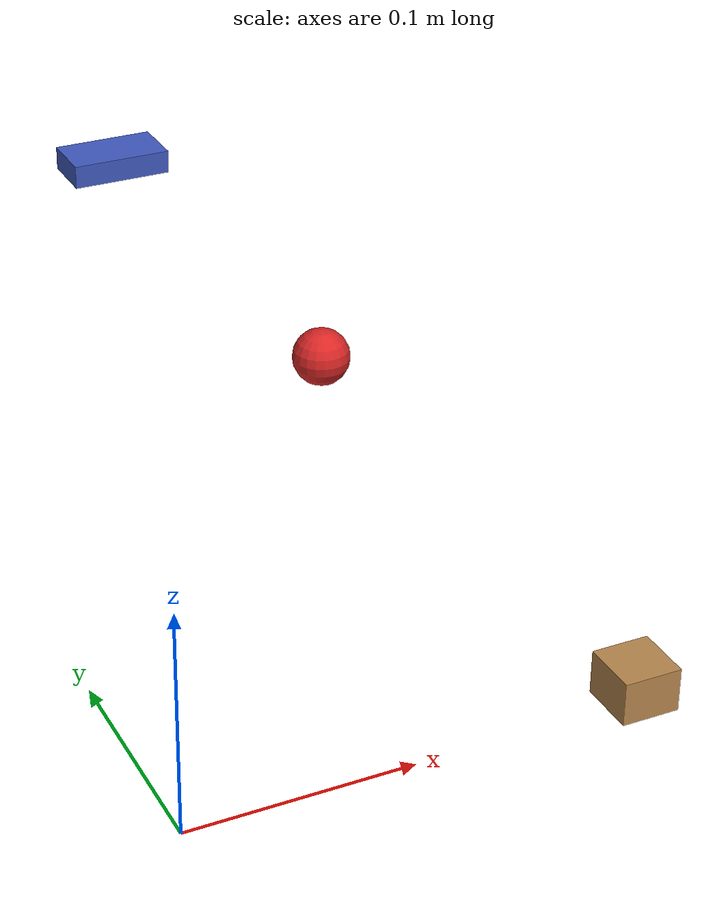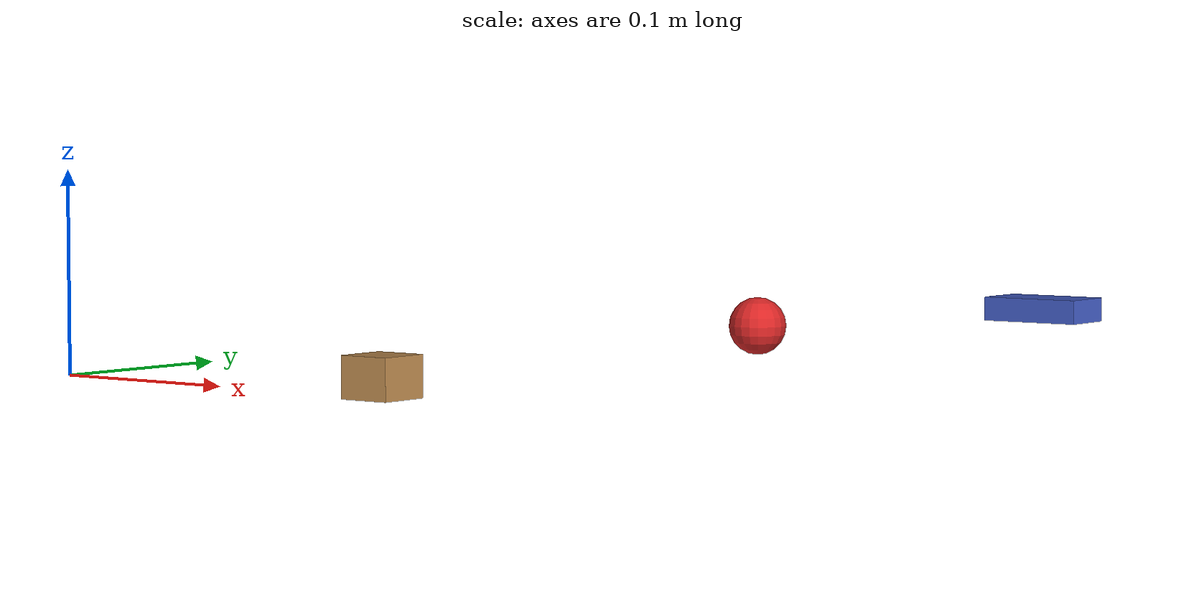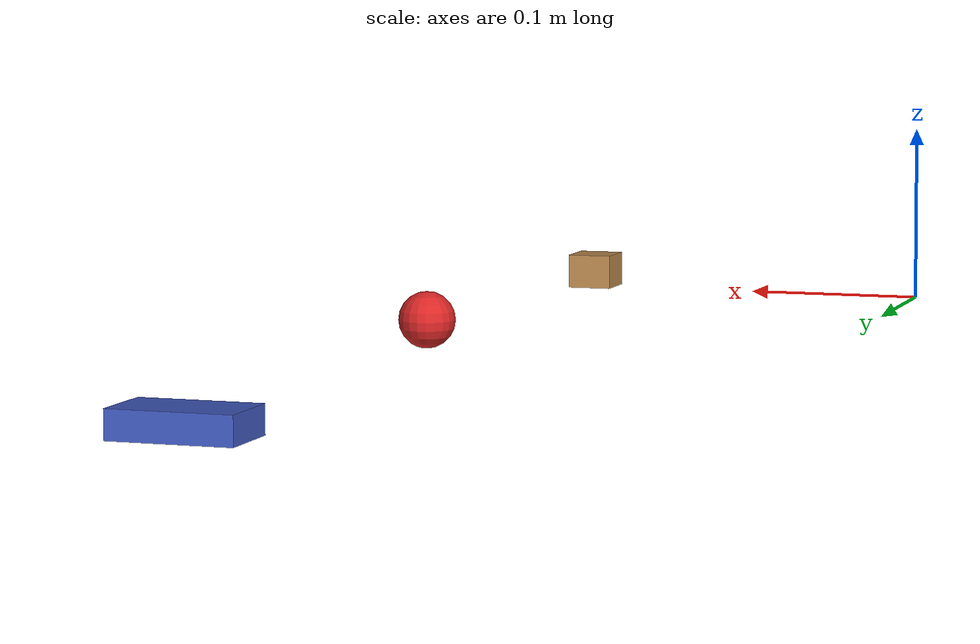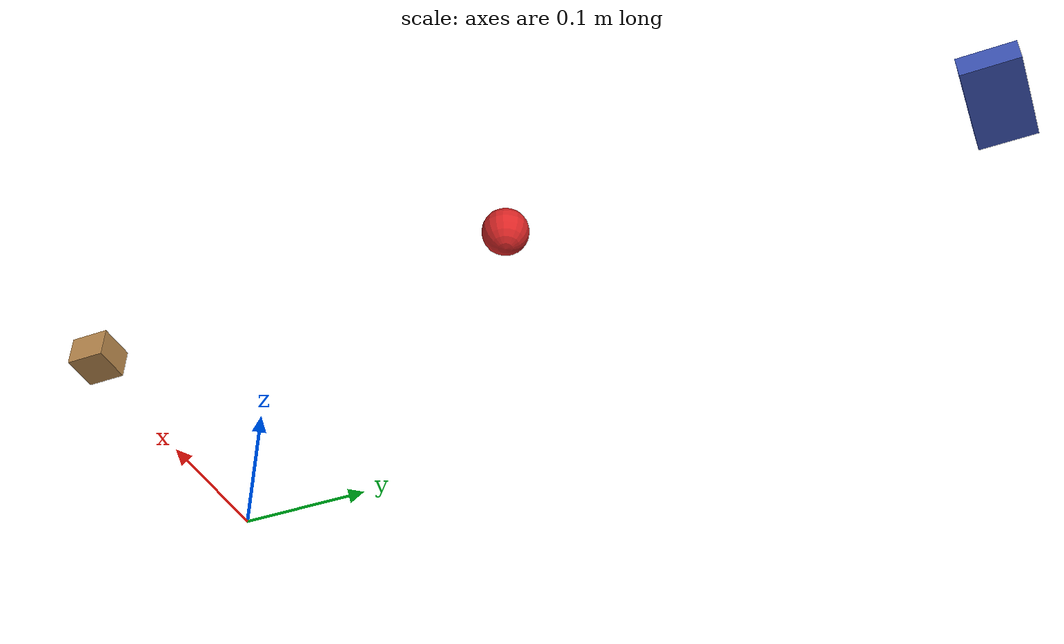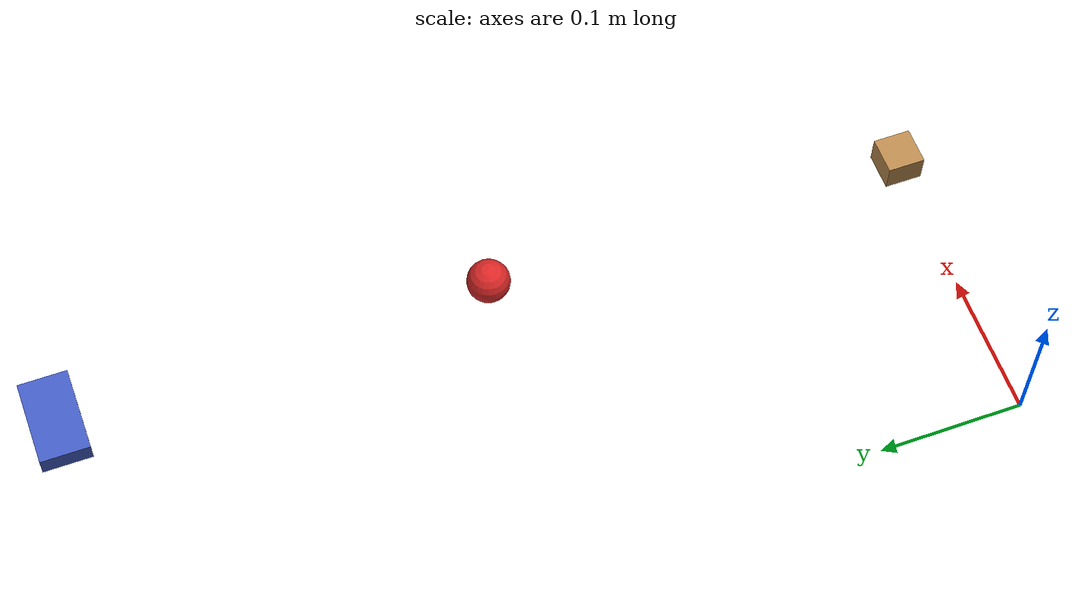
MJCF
<mujoco model="microduck_objects">
    <compiler angle="radian" autolimits="true"/>

    <include file="object_block.xml"/>
    <include file="object_rubber_ball.xml"/>
    <include file="object_sock.xml"/>
</mujoco>

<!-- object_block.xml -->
<mujoco model="microduck_object_block">
    <worldbody>
        <body name="block" pos="0.2 0 0.010">
            <freejoint name="block_free"/>
            <inertial pos="0 0 0" mass="0.012" diaginertia="1.08e-6 1.08e-6 1.35e-6"/>
            <geom name="block_geom" type="box" size="0.013 0.013 0.010"
                  condim="4" friction="0.9 0.02 0.001" solref="0.01 1"
                  solimp="0.95 0.99 0.001 0.5 2" priority="2"
                  rgba="0.72 0.53 0.30 1"/>
        </body>
    </worldbody>
</mujoco>

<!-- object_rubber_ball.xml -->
<mujoco model="microduck_object_rubber_ball">
    <worldbody>
        <body name="rubber_ball" pos="0.2 0.3 0.015">
            <freejoint name="rubber_ball_free"/>
            <inertial pos="0 0 0" mass="0.015" diaginertia="1.35e-6 1.35e-6 1.35e-6"/>
            <geom name="rubber_ball_geom" type="sphere" size="0.015"
                  condim="4" friction="1.3 0.02 0.0005" solref="0.01 1"
                  solimp="0.95 0.99 0.001 0.5 2" priority="2"
                  rgba="0.85 0.15 0.15 1"/>
        </body>
    </worldbody>
</mujoco>

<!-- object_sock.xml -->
<mujoco model="microduck_object_sock">
    <worldbody>
        <body name="sock" pos="0.2 0.6 0.007">
            <freejoint name="sock_free"/>
            <inertial pos="0 0 0" mass="0.010" diaginertia="1.13e-6 3.16e-6 3.79e-6"/>
            <geom name="sock_geom" type="box" size="0.030 0.017 0.007"
                  condim="4" friction="1.5 0.03 0.002" solref="0.01 1"
                  solimp="0.95 0.99 0.001 0.5 2" priority="2"
                  rgba="0.25 0.35 0.75 1"/>
        </body>
    </worldbody>
</mujoco>
